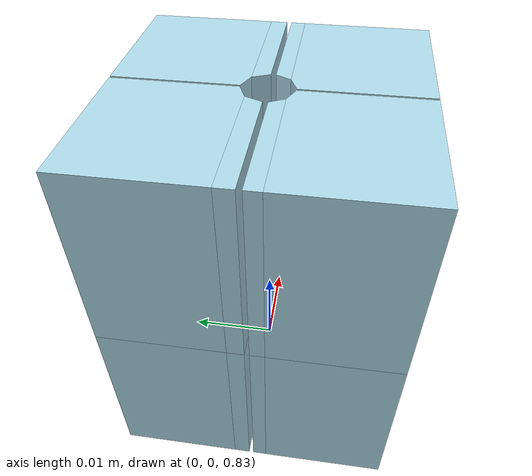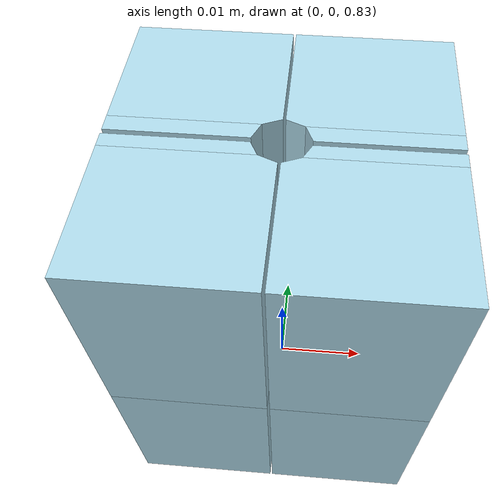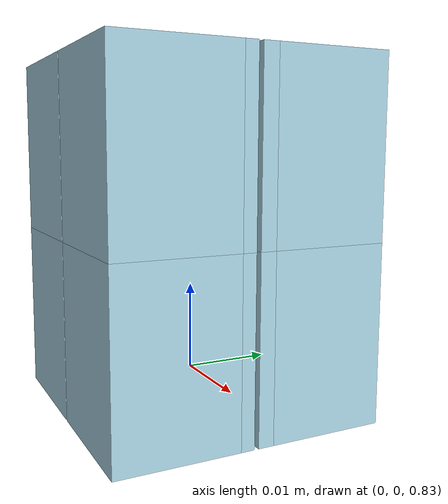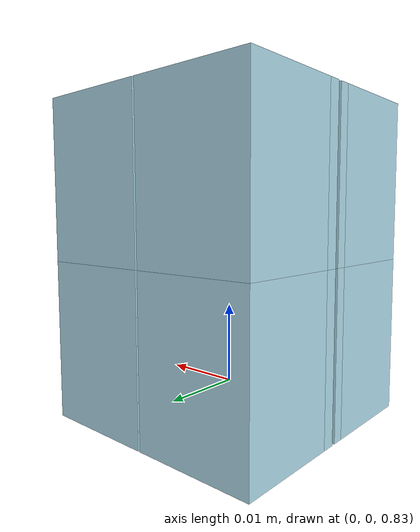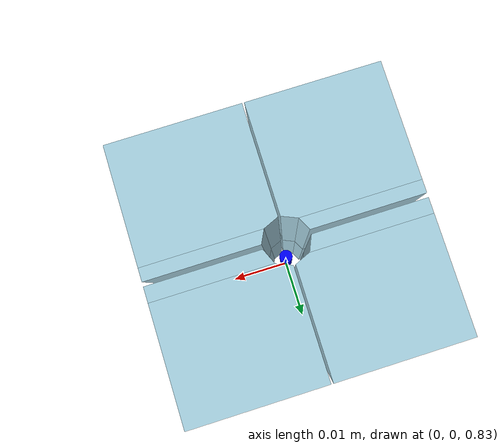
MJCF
<?xml version="1.0" encoding="UTF-8"?>
<mujoco model="hole">
	<compiler coordinate="global"/>
	<asset>
		<mesh name="2_2_16_1__0" vertex="0.0845 -0.00025 0.83325 0.09725 -0.00025 0.83325 0.0845 0.0015 0.83325 0.098 0.0015 0.83325 0.0845 -0.00025 0.84325 0.09725 -0.00025 0.84325 0.0845 0.0015 0.84325 0.098 0.0015 0.84325 0.0845 -0.00025 0.85325 0.09725 -0.00025 0.85325 0.0845 0.0015 0.85325 0.098 0.0015 0.85325 "/>
		<mesh name="2_2_16_1__1" vertex="0.0845 0.0015 0.83325 0.098 0.0015 0.83325 0.09975 0.00225 0.83325 0.0845 0.01475 0.83325 0.09975 0.01475 0.83325 0.0845 0.0015 0.84325 0.098 0.0015 0.84325 0.09975 0.00225 0.84325 0.0845 0.01475 0.84325 0.09975 0.01475 0.84325 0.0845 0.0015 0.85325 0.098 0.0015 0.85325 0.09975 0.00225 0.85325 0.0845 0.01475 0.85325 0.09975 0.01475 0.85325 "/>
		<mesh name="2_2_16_1__2" vertex="0.10175 0.0015 0.83325 0.11525 0.0015 0.83325 0.1 0.00225 0.83325 0.1 0.01475 0.83325 0.11525 0.01475 0.83325 0.10175 0.0015 0.84325 0.11525 0.0015 0.84325 0.1 0.00225 0.84325 0.1 0.01475 0.84325 0.11525 0.01475 0.84325 0.10175 0.0015 0.85325 0.11525 0.0015 0.85325 0.1 0.00225 0.85325 0.1 0.01475 0.85325 0.11525 0.01475 0.85325 "/>
		<mesh name="2_2_16_1__3" vertex="0.1025 -0.00025 0.83325 0.11525 -0.00025 0.83325 0.10175 0.0015 0.83325 0.11525 0.0015 0.83325 0.1025 -0.00025 0.84325 0.11525 -0.00025 0.84325 0.10175 0.0015 0.84325 0.11525 0.0015 0.84325 0.1025 -0.00025 0.85325 0.11525 -0.00025 0.85325 0.10175 0.0015 0.85325 0.11525 0.0015 0.85325 "/>
		<mesh name="2_2_16_1__4" vertex="0.0845 -0.00225 0.83325 0.098 -0.00225 0.83325 0.0845 -0.00075 0.83325 0.09725 -0.00075 0.83325 0.0845 -0.00225 0.84325 0.098 -0.00225 0.84325 0.0845 -0.00075 0.84325 0.09725 -0.00075 0.84325 0.0845 -0.00225 0.85325 0.098 -0.00225 0.85325 0.0845 -0.00075 0.85325 0.09725 -0.00075 0.85325 "/>
		<mesh name="2_2_16_1__5" vertex="0.0845 -0.01575 0.83325 0.09975 -0.01575 0.83325 0.09975 -0.003 0.83325 0.0845 -0.00225 0.83325 0.098 -0.00225 0.83325 0.0845 -0.01575 0.84325 0.09975 -0.01575 0.84325 0.09975 -0.003 0.84325 0.0845 -0.00225 0.84325 0.098 -0.00225 0.84325 0.0845 -0.01575 0.85325 0.09975 -0.01575 0.85325 0.09975 -0.003 0.85325 0.0845 -0.00225 0.85325 0.098 -0.00225 0.85325 "/>
		<mesh name="2_2_16_1__6" vertex="0.1 -0.01575 0.83325 0.11525 -0.01575 0.83325 0.1 -0.003 0.83325 0.10175 -0.00225 0.83325 0.11525 -0.00225 0.83325 0.1 -0.01575 0.84325 0.11525 -0.01575 0.84325 0.1 -0.003 0.84325 0.10175 -0.00225 0.84325 0.11525 -0.00225 0.84325 0.1 -0.01575 0.85325 0.11525 -0.01575 0.85325 0.1 -0.003 0.85325 0.10175 -0.00225 0.85325 0.11525 -0.00225 0.85325 "/>
		<mesh name="2_2_16_1__7" vertex="0.10175 -0.00225 0.83325 0.11525 -0.00225 0.83325 0.1025 -0.00075 0.83325 0.11525 -0.00075 0.83325 0.10175 -0.00225 0.84325 0.11525 -0.00225 0.84325 0.1025 -0.00075 0.84325 0.11525 -0.00075 0.84325 0.10175 -0.00225 0.85325 0.11525 -0.00225 0.85325 0.1025 -0.00075 0.85325 0.11525 -0.00075 0.85325 "/>
		<mesh name="2_2_16_1__8" vertex="0.0845 -0.00025 0.81325 0.09725 -0.00025 0.81325 0.0845 0.0015 0.81325 0.098 0.0015 0.81325 0.0845 -0.00025 0.82325 0.09725 -0.00025 0.82325 0.0845 0.0015 0.82325 0.098 0.0015 0.82325 0.0845 -0.00025 0.83325 0.09725 -0.00025 0.83325 0.0845 0.0015 0.83325 0.098 0.0015 0.83325 "/>
		<mesh name="2_2_16_1__9" vertex="0.0845 0.0015 0.81325 0.098 0.0015 0.81325 0.09975 0.00225 0.81325 0.0845 0.01475 0.81325 0.09975 0.01475 0.81325 0.0845 0.0015 0.82325 0.098 0.0015 0.82325 0.09975 0.00225 0.82325 0.0845 0.01475 0.82325 0.09975 0.01475 0.82325 0.0845 0.0015 0.83325 0.098 0.0015 0.83325 0.09975 0.00225 0.83325 0.0845 0.01475 0.83325 0.09975 0.01475 0.83325 "/>
		<mesh name="2_2_16_1__10" vertex="0.10175 0.0015 0.81325 0.11525 0.0015 0.81325 0.1 0.00225 0.81325 0.1 0.01475 0.81325 0.11525 0.01475 0.81325 0.10175 0.0015 0.82325 0.11525 0.0015 0.82325 0.1 0.00225 0.82325 0.1 0.01475 0.82325 0.11525 0.01475 0.82325 0.10175 0.0015 0.83325 0.11525 0.0015 0.83325 0.1 0.00225 0.83325 0.1 0.01475 0.83325 0.11525 0.01475 0.83325 "/>
		<mesh name="2_2_16_1__11" vertex="0.1025 -0.00025 0.81325 0.11525 -0.00025 0.81325 0.10175 0.0015 0.81325 0.11525 0.0015 0.81325 0.1025 -0.00025 0.82325 0.11525 -0.00025 0.82325 0.10175 0.0015 0.82325 0.11525 0.0015 0.82325 0.1025 -0.00025 0.83325 0.11525 -0.00025 0.83325 0.10175 0.0015 0.83325 0.11525 0.0015 0.83325 "/>
		<mesh name="2_2_16_1__12" vertex="0.0845 -0.00225 0.81325 0.098 -0.00225 0.81325 0.0845 -0.00075 0.81325 0.09725 -0.00075 0.81325 0.0845 -0.00225 0.82325 0.098 -0.00225 0.82325 0.0845 -0.00075 0.82325 0.09725 -0.00075 0.82325 0.0845 -0.00225 0.83325 0.098 -0.00225 0.83325 0.0845 -0.00075 0.83325 0.09725 -0.00075 0.83325 "/>
		<mesh name="2_2_16_1__13" vertex="0.0845 -0.01575 0.81325 0.09975 -0.01575 0.81325 0.09975 -0.003 0.81325 0.0845 -0.00225 0.81325 0.098 -0.00225 0.81325 0.0845 -0.01575 0.82325 0.09975 -0.01575 0.82325 0.09975 -0.003 0.82325 0.0845 -0.00225 0.82325 0.098 -0.00225 0.82325 0.0845 -0.01575 0.83325 0.09975 -0.01575 0.83325 0.09975 -0.003 0.83325 0.0845 -0.00225 0.83325 0.098 -0.00225 0.83325 "/>
		<mesh name="2_2_16_1__14" vertex="0.1 -0.01575 0.81325 0.11525 -0.01575 0.81325 0.1 -0.003 0.81325 0.10175 -0.00225 0.81325 0.11525 -0.00225 0.81325 0.1 -0.01575 0.82325 0.11525 -0.01575 0.82325 0.1 -0.003 0.82325 0.10175 -0.00225 0.82325 0.11525 -0.00225 0.82325 0.1 -0.01575 0.83325 0.11525 -0.01575 0.83325 0.1 -0.003 0.83325 0.10175 -0.00225 0.83325 0.11525 -0.00225 0.83325 "/>
		<mesh name="2_2_16_1__15" vertex="0.10175 -0.00225 0.81325 0.11525 -0.00225 0.81325 0.1025 -0.00075 0.81325 0.11525 -0.00075 0.81325 0.10175 -0.00225 0.82325 0.11525 -0.00225 0.82325 0.1025 -0.00075 0.82325 0.11525 -0.00075 0.82325 0.10175 -0.00225 0.83325 0.11525 -0.00225 0.83325 0.1025 -0.00075 0.83325 0.11525 -0.00075 0.83325 "/>
	</asset>
	<worldbody>
		<light dir="0 -1 -1" diffuse="1 1 1" pos="0 0 10"/>
		<body name="2_2_16_1_" user="hole_4mm">
			<geom type="mesh" name="2_2_16_1__0_G" mesh="2_2_16_1__0" rgba="0.67 0.84 0.9 1" pos="-0.0999397 0.0005174 0.0126188" quat="1 0 0 0 " density="6700.000000" solimp="0.998 0.998 0.001" solref="0.001 1" friction="0.950000 0.300000 0.100000"/>
			<geom type="mesh" name="2_2_16_1__1_G" mesh="2_2_16_1__1" rgba="0.67 0.84 0.9 1" pos="-0.0999397 0.0005174 0.0126188" quat="1 0 0 0 " density="6700.000000" solimp="0.998 0.998 0.001" solref="0.001 1" friction="0.950000 0.300000 0.100000"/>
			<geom type="mesh" name="2_2_16_1__2_G" mesh="2_2_16_1__2" rgba="0.67 0.84 0.9 1" pos="-0.0999397 0.0005174 0.0126188" quat="1 0 0 0 " density="6700.000000" solimp="0.998 0.998 0.001" solref="0.001 1" friction="0.950000 0.300000 0.100000"/>
			<geom type="mesh" name="2_2_16_1__3_G" mesh="2_2_16_1__3" rgba="0.67 0.84 0.9 1" pos="-0.0999397 0.0005174 0.0126188" quat="1 0 0 0 " density="6700.000000" solimp="0.998 0.998 0.001" solref="0.001 1" friction="0.950000 0.300000 0.100000"/>
			<geom type="mesh" name="2_2_16_1__4_G" mesh="2_2_16_1__4" rgba="0.67 0.84 0.9 1" pos="-0.0999397 0.0005174 0.0126188" quat="1 0 0 0 " density="6700.000000" solimp="0.998 0.998 0.001" solref="0.001 1" friction="0.950000 0.300000 0.100000"/>
			<geom type="mesh" name="2_2_16_1__5_G" mesh="2_2_16_1__5" rgba="0.67 0.84 0.9 1" pos="-0.0999397 0.0005174 0.0126188" quat="1 0 0 0 " density="6700.000000" solimp="0.998 0.998 0.001" solref="0.001 1" friction="0.950000 0.300000 0.100000"/>
			<geom type="mesh" name="2_2_16_1__6_G" mesh="2_2_16_1__6" rgba="0.67 0.84 0.9 1" pos="-0.0999397 0.0005174 0.0126188" quat="1 0 0 0 " density="6700.000000" solimp="0.998 0.998 0.001" solref="0.001 1" friction="0.950000 0.300000 0.100000"/>
			<geom type="mesh" name="2_2_16_1__7_G" mesh="2_2_16_1__7" rgba="0.67 0.84 0.9 1" pos="-0.0999397 0.0005174 0.0126188" quat="1 0 0 0 " density="6700.000000" solimp="0.998 0.998 0.001" solref="0.001 1" friction="0.950000 0.300000 0.100000"/>
			<geom type="mesh" name="2_2_16_1__8_G" mesh="2_2_16_1__8" rgba="0.67 0.84 0.9 1" pos="-0.0999397 0.0005174 0.0126188" quat="1 0 0 0 " density="6700.000000" solimp="0.998 0.998 0.001" solref="0.001 1" friction="0.950000 0.300000 0.100000"/>
			<geom type="mesh" name="2_2_16_1__9_G" mesh="2_2_16_1__9" rgba="0.67 0.84 0.9 1" pos="-0.0999397 0.0005174 0.0126188" quat="1 0 0 0 " density="6700.000000" solimp="0.998 0.998 0.001" solref="0.001 1" friction="0.950000 0.300000 0.100000"/>
			<geom type="mesh" name="2_2_16_1__10_G" mesh="2_2_16_1__10" rgba="0.67 0.84 0.9 1" pos="-0.0999397 0.0005174 0.0126188" quat="1 0 0 0 " density="6700.000000" solimp="0.998 0.998 0.001" solref="0.001 1" friction="0.950000 0.300000 0.100000"/>
			<geom type="mesh" name="2_2_16_1__11_G" mesh="2_2_16_1__11" rgba="0.67 0.84 0.9 1" pos="-0.0999397 0.0005174 0.0126188" quat="1 0 0 0 " density="6700.000000" solimp="0.998 0.998 0.001" solref="0.001 1" friction="0.950000 0.300000 0.100000"/>
			<geom type="mesh" name="2_2_16_1__12_G" mesh="2_2_16_1__12" rgba="0.67 0.84 0.9 1" pos="-0.0999397 0.0005174 0.0126188" quat="1 0 0 0 " density="6700.000000" solimp="0.998 0.998 0.001" solref="0.001 1" friction="0.950000 0.300000 0.100000"/>
			<geom type="mesh" name="2_2_16_1__13_G" mesh="2_2_16_1__13" rgba="0.67 0.84 0.9 1" pos="-0.0999397 0.0005174 0.0126188" quat="1 0 0 0 " density="6700.000000" solimp="0.998 0.998 0.001" solref="0.001 1" friction="0.950000 0.300000 0.100000"/>
			<geom type="mesh" name="2_2_16_1__14_G" mesh="2_2_16_1__14" rgba="0.67 0.84 0.9 1" pos="-0.0999397 0.0005174 0.0126188" quat="1 0 0 0 " density="6700.000000" solimp="0.998 0.998 0.001" solref="0.001 1" friction="0.950000 0.300000 0.100000"/>
			<geom type="mesh" name="2_2_16_1__15_G" mesh="2_2_16_1__15" rgba="0.67 0.84 0.9 1" pos="-0.0999397 0.0005174 0.0126188" quat="1 0 0 0 " density="6700.000000" solimp="0.998 0.998 0.001" solref="0.001 1" friction="0.950000 0.300000 0.100000"/>
			<site name="hole1_fr" type="cylinder" size="0.001 0.005" rgba="0 0 1 1" pos="2.8392e-06 -5.9837e-06 0.839997" quat="0.000101336 0 0 1 "/>
		</body>
	</worldbody>
</mujoco>
